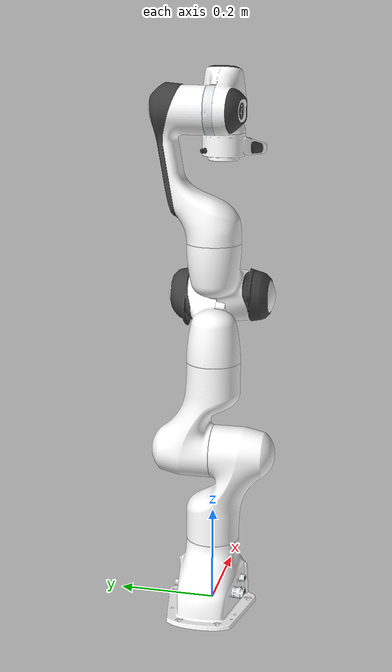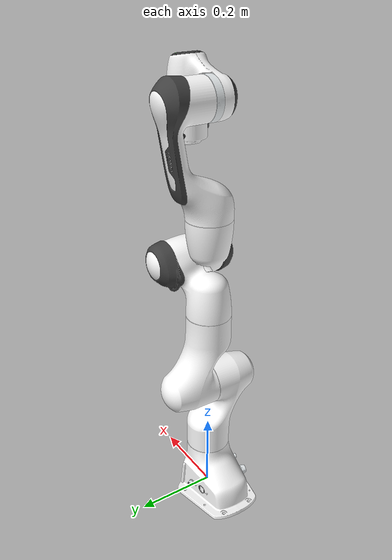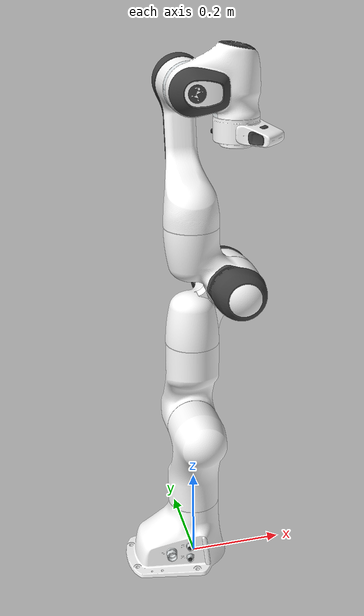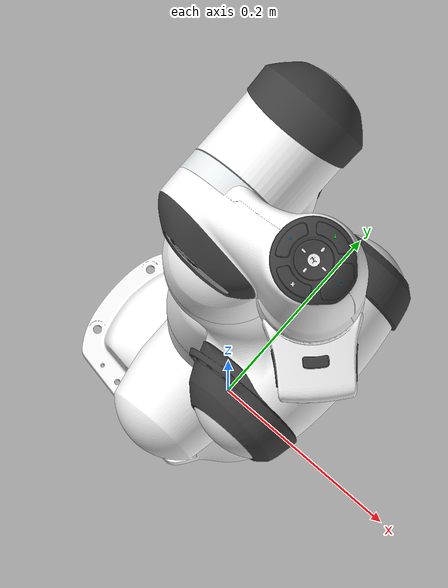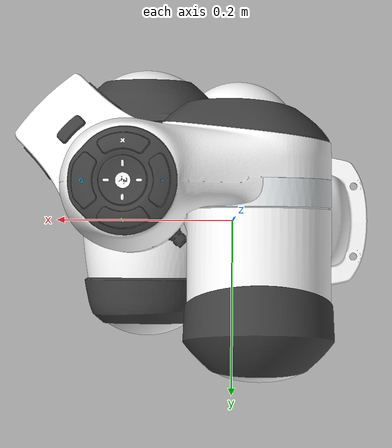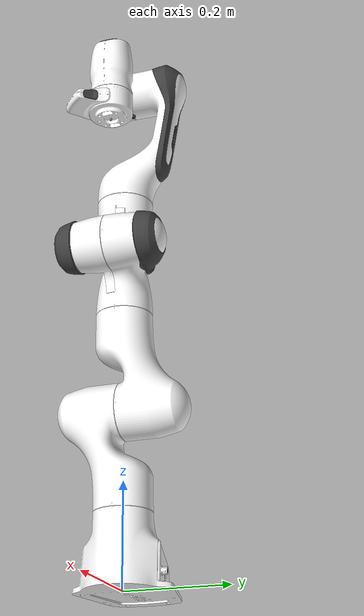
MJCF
<mujoco model="panda">
  <compiler angle="radian" autolimits="true" />
  <option integrator="implicitfast" timestep="0.001" cone="elliptic" impratio="10" />
  <default>
    <default class="panda">
      <material specular="0.5" shininess="0.25" />
      <joint armature="0.1" damping="1" axis="0 0 1" range="-2.8973 2.8973" />
      <general dyntype="none" biastype="affine" ctrlrange="-2.8973 2.8973" forcerange="-87 87" />
      <default class="finger">
        <joint axis="0 1 0" type="slide" range="0 0.04" />
      </default>
      <default class="visual">
        <geom type="mesh" contype="0" conaffinity="0" group="2" />
      </default>
      <default class="collision">
        <geom type="mesh" group="3" />
        <default class="fingertip_pad_collision_1">
          <geom type="box" size="0.0085 0.004 0.0085" pos="0 0.0055 0.0445" />
        </default>
        <default class="fingertip_pad_collision_2">
          <geom type="box" size="0.003 0.002 0.003" pos="0.0055 0.002 0.05" />
        </default>
        <default class="fingertip_pad_collision_3">
          <geom type="box" size="0.003 0.002 0.003" pos="-0.0055 0.002 0.05" />
        </default>
        <default class="fingertip_pad_collision_4">
          <geom type="box" size="0.003 0.002 0.0035" pos="0.0055 0.002 0.0395" />
        </default>
        <default class="fingertip_pad_collision_5">
          <geom type="box" size="0.003 0.002 0.0035" pos="-0.0055 0.002 0.0395" />
        </default>
      </default>
    </default>
    <default class="rq_2f85">
      <mesh scale="0.001 0.001 0.001" />
      <general biastype="affine" />
      <joint axis="1 0 0" />
      <default class="rq_driver">
        <joint range="0 0.8" armature="0.005" damping="0.1" solimplimit="0.95 0.99 0.001" solreflimit="0.005 1" />
      </default>
      <default class="rq_follower">
        <joint range="-0.872664 0.872664" armature="0.001" pos="0 -0.018 0.0065" solimplimit="0.95 0.99 0.001" solreflimit="0.005 1" />
      </default>
      <default class="rq_spring_link">
        <joint range="-0.29670597283 0.8" armature="0.001" stiffness="0.05" springref="2.62" damping="0.00125" />
      </default>
      <default class="rq_coupler">
        <joint range="-1.57 0" armature="0.001" solimplimit="0.95 0.99 0.001" solreflimit="0.005 1" />
      </default>
      <default class="rq_visual">
        <geom type="mesh" contype="0" conaffinity="0" group="2" />
      </default>
      <default class="rq_collision">
        <geom type="mesh" group="3" />
        <default class="rq_pad_box1">
          <geom mass="0" type="box" pos="0 -0.0026 0.028125" size="0.011 0.004 0.009375" friction="0.7" solimp="0.95 0.99 0.001" solref="0.004 1" priority="1" rgba="0.55 0.55 0.55 1" />
        </default>
        <default class="rq_pad_box2">
          <geom mass="0" type="box" pos="0 -0.0026 0.009375" size="0.011 0.004 0.009375" friction="0.6" solimp="0.95 0.99 0.001" solref="0.004 1" priority="1" rgba="0.45 0.45 0.45 1" />
        </default>
      </default>
    </default>
  </default>
  <asset>
    <material class="panda" name="white" rgba="1 1 1 1" />
    <material class="panda" name="off_white" rgba="0.901961 0.921569 0.929412 1" />
    <material class="panda" name="black" rgba="0.25 0.25 0.25 1" />
    <material class="panda" name="green" rgba="0 1 0 1" />
    <material class="panda" name="light_blue" rgba="0.039216 0.541176 0.780392 1" />
    <mesh name="link0_c" file="vendor/mujoco_menagerie/franka_emika_panda/assets/link0.stl" />
    <mesh name="link1_c" file="vendor/mujoco_menagerie/franka_emika_panda/assets/link1.stl" />
    <mesh name="link2_c" file="vendor/mujoco_menagerie/franka_emika_panda/assets/link2.stl" />
    <mesh name="link3_c" file="vendor/mujoco_menagerie/franka_emika_panda/assets/link3.stl" />
    <mesh name="link4_c" file="vendor/mujoco_menagerie/franka_emika_panda/assets/link4.stl" />
    <mesh name="link5_c0" file="vendor/mujoco_menagerie/franka_emika_panda/assets/link5_collision_0.obj" />
    <mesh name="link5_c1" file="vendor/mujoco_menagerie/franka_emika_panda/assets/link5_collision_1.obj" />
    <mesh name="link5_c2" file="vendor/mujoco_menagerie/franka_emika_panda/assets/link5_collision_2.obj" />
    <mesh name="link6_c" file="vendor/mujoco_menagerie/franka_emika_panda/assets/link6.stl" />
    <mesh name="link7_c" file="vendor/mujoco_menagerie/franka_emika_panda/assets/link7.stl" />
    <mesh name="hand_c" file="vendor/mujoco_menagerie/franka_emika_panda/assets/hand.stl" />
    <mesh file="vendor/mujoco_menagerie/franka_emika_panda/assets/link0_0.obj" />
    <mesh file="vendor/mujoco_menagerie/franka_emika_panda/assets/link0_1.obj" />
    <mesh file="vendor/mujoco_menagerie/franka_emika_panda/assets/link0_2.obj" />
    <mesh file="vendor/mujoco_menagerie/franka_emika_panda/assets/link0_3.obj" />
    <mesh file="vendor/mujoco_menagerie/franka_emika_panda/assets/link0_4.obj" />
    <mesh file="vendor/mujoco_menagerie/franka_emika_panda/assets/link0_5.obj" />
    <mesh file="vendor/mujoco_menagerie/franka_emika_panda/assets/link0_7.obj" />
    <mesh file="vendor/mujoco_menagerie/franka_emika_panda/assets/link0_8.obj" />
    <mesh file="vendor/mujoco_menagerie/franka_emika_panda/assets/link0_9.obj" />
    <mesh file="vendor/mujoco_menagerie/franka_emika_panda/assets/link0_10.obj" />
    <mesh file="vendor/mujoco_menagerie/franka_emika_panda/assets/link0_11.obj" />
    <mesh file="vendor/mujoco_menagerie/franka_emika_panda/assets/link1.obj" />
    <mesh file="vendor/mujoco_menagerie/franka_emika_panda/assets/link2.obj" />
    <mesh file="vendor/mujoco_menagerie/franka_emika_panda/assets/link3_0.obj" />
    <mesh file="vendor/mujoco_menagerie/franka_emika_panda/assets/link3_1.obj" />
    <mesh file="vendor/mujoco_menagerie/franka_emika_panda/assets/link3_2.obj" />
    <mesh file="vendor/mujoco_menagerie/franka_emika_panda/assets/link3_3.obj" />
    <mesh file="vendor/mujoco_menagerie/franka_emika_panda/assets/link4_0.obj" />
    <mesh file="vendor/mujoco_menagerie/franka_emika_panda/assets/link4_1.obj" />
    <mesh file="vendor/mujoco_menagerie/franka_emika_panda/assets/link4_2.obj" />
    <mesh file="vendor/mujoco_menagerie/franka_emika_panda/assets/link4_3.obj" />
    <mesh file="vendor/mujoco_menagerie/franka_emika_panda/assets/link5_0.obj" />
    <mesh file="vendor/mujoco_menagerie/franka_emika_panda/assets/link5_1.obj" />
    <mesh file="vendor/mujoco_menagerie/franka_emika_panda/assets/link5_2.obj" />
    <mesh file="vendor/mujoco_menagerie/franka_emika_panda/assets/link6_0.obj" />
    <mesh file="vendor/mujoco_menagerie/franka_emika_panda/assets/link6_1.obj" />
    <mesh file="vendor/mujoco_menagerie/franka_emika_panda/assets/link6_2.obj" />
    <mesh file="vendor/mujoco_menagerie/franka_emika_panda/assets/link6_3.obj" />
    <mesh file="vendor/mujoco_menagerie/franka_emika_panda/assets/link6_4.obj" />
    <mesh file="vendor/mujoco_menagerie/franka_emika_panda/assets/link6_5.obj" />
    <mesh file="vendor/mujoco_menagerie/franka_emika_panda/assets/link6_6.obj" />
    <mesh file="vendor/mujoco_menagerie/franka_emika_panda/assets/link6_7.obj" />
    <mesh file="vendor/mujoco_menagerie/franka_emika_panda/assets/link6_8.obj" />
    <mesh file="vendor/mujoco_menagerie/franka_emika_panda/assets/link6_9.obj" />
    <mesh file="vendor/mujoco_menagerie/franka_emika_panda/assets/link6_10.obj" />
    <mesh file="vendor/mujoco_menagerie/franka_emika_panda/assets/link6_11.obj" />
    <mesh file="vendor/mujoco_menagerie/franka_emika_panda/assets/link6_12.obj" />
    <mesh file="vendor/mujoco_menagerie/franka_emika_panda/assets/link6_13.obj" />
    <mesh file="vendor/mujoco_menagerie/franka_emika_panda/assets/link6_14.obj" />
    <mesh file="vendor/mujoco_menagerie/franka_emika_panda/assets/link6_15.obj" />
    <mesh file="vendor/mujoco_menagerie/franka_emika_panda/assets/link6_16.obj" />
    <mesh file="vendor/mujoco_menagerie/franka_emika_panda/assets/link7_0.obj" />
    <mesh file="vendor/mujoco_menagerie/franka_emika_panda/assets/link7_1.obj" />
    <mesh file="vendor/mujoco_menagerie/franka_emika_panda/assets/link7_2.obj" />
    <mesh file="vendor/mujoco_menagerie/franka_emika_panda/assets/link7_3.obj" />
    <mesh file="vendor/mujoco_menagerie/franka_emika_panda/assets/link7_4.obj" />
    <mesh file="vendor/mujoco_menagerie/franka_emika_panda/assets/link7_5.obj" />
    <mesh file="vendor/mujoco_menagerie/franka_emika_panda/assets/link7_6.obj" />
    <mesh file="vendor/mujoco_menagerie/franka_emika_panda/assets/link7_7.obj" />
    <mesh file="vendor/mujoco_menagerie/franka_emika_panda/assets/hand_0.obj" />
    <mesh file="vendor/mujoco_menagerie/franka_emika_panda/assets/hand_1.obj" />
    <mesh file="vendor/mujoco_menagerie/franka_emika_panda/assets/hand_2.obj" />
    <mesh file="vendor/mujoco_menagerie/franka_emika_panda/assets/hand_3.obj" />
    <mesh file="vendor/mujoco_menagerie/franka_emika_panda/assets/hand_4.obj" />
    <mesh file="vendor/mujoco_menagerie/franka_emika_panda/assets/finger_0.obj" />
    <mesh file="vendor/mujoco_menagerie/franka_emika_panda/assets/finger_1.obj" />
    <material name="rq_metal" rgba="0.58 0.58 0.58 1" />
    <material name="rq_silicone" rgba="0.1882 0.1882 0.1882 1" />
    <material name="rq_gray" rgba="0.4627 0.4627 0.4627 1" />
    <material name="rq_black" rgba="0.149 0.149 0.149 1" />
    <mesh class="rq_2f85" file="vendor/mujoco_menagerie/robotiq_2f85/assets/base_mount.stl" name="rq_base_mount" />
    <mesh class="rq_2f85" file="vendor/mujoco_menagerie/robotiq_2f85/assets/base.stl" name="rq_base" />
    <mesh class="rq_2f85" file="vendor/mujoco_menagerie/robotiq_2f85/assets/driver.stl" name="rq_driver" />
    <mesh class="rq_2f85" file="vendor/mujoco_menagerie/robotiq_2f85/assets/coupler.stl" name="rq_coupler" />
    <mesh class="rq_2f85" file="vendor/mujoco_menagerie/robotiq_2f85/assets/follower.stl" name="rq_follower" />
    <mesh class="rq_2f85" file="vendor/mujoco_menagerie/robotiq_2f85/assets/pad.stl" name="rq_pad" />
    <mesh class="rq_2f85" file="vendor/mujoco_menagerie/robotiq_2f85/assets/silicone_pad.stl" name="rq_silicone_pad" />
    <mesh class="rq_2f85" file="vendor/mujoco_menagerie/robotiq_2f85/assets/spring_link.stl" name="rq_spring_link" />
  </asset>
  <worldbody>
    <light name="top" pos="0 0 2" mode="trackcom" />
    <body name="link0" childclass="panda" gravcomp="1">
      <inertial mass="0.629769" pos="-0.041018 -0.00014 0.049974" fullinertia="0.00315 0.00388 0.004285 8.2904e-7 0.00015 8.2299e-6" />
      <geom mesh="link0_0" material="off_white" class="visual" />
      <geom mesh="link0_1" material="black" class="visual" />
      <geom mesh="link0_2" material="off_white" class="visual" />
      <geom mesh="link0_3" material="black" class="visual" />
      <geom mesh="link0_4" material="off_white" class="visual" />
      <geom mesh="link0_5" material="black" class="visual" />
      <geom mesh="link0_7" material="white" class="visual" />
      <geom mesh="link0_8" material="white" class="visual" />
      <geom mesh="link0_9" material="black" class="visual" />
      <geom mesh="link0_10" material="off_white" class="visual" />
      <geom mesh="link0_11" material="white" class="visual" />
      <geom mesh="link0_c" class="collision" />
      <body name="link1" pos="0 0 0.333" gravcomp="1">
        <inertial mass="4.970684" pos="0.003875 0.002081 -0.04762" fullinertia="0.70337 0.70661 0.0091170 -0.00013900 0.0067720 0.019169" />
        <joint name="joint1" />
        <geom material="white" mesh="link1" class="visual" />
        <geom mesh="link1_c" class="collision" />
        <body name="link2" quat="1 -1 0 0" gravcomp="1">
          <inertial mass="0.646926" pos="-0.003141 -0.02872 0.003495" fullinertia="0.0079620 2.8110e-2 2.5995e-2 -3.925e-3 1.0254e-2 7.04e-4" />
          <joint name="joint2" range="-1.7628 1.7628" />
          <geom material="white" mesh="link2" class="visual" />
          <geom mesh="link2_c" class="collision" />
          <body name="link3" pos="0 -0.316 0" quat="1 1 0 0" gravcomp="1">
            <joint name="joint3" />
            <inertial mass="3.228604" pos="2.7518e-2 3.9252e-2 -6.6502e-2" fullinertia="3.7242e-2 3.6155e-2 1.083e-2 -4.761e-3 -1.1396e-2 -1.2805e-2" />
            <geom mesh="link3_0" material="white" class="visual" />
            <geom mesh="link3_1" material="white" class="visual" />
            <geom mesh="link3_2" material="white" class="visual" />
            <geom mesh="link3_3" material="black" class="visual" />
            <geom mesh="link3_c" class="collision" />
            <body name="link4" pos="0.0825 0 0" quat="1 1 0 0" gravcomp="1">
              <inertial mass="3.587895" pos="-5.317e-2 1.04419e-1 2.7454e-2" fullinertia="2.5853e-2 1.9552e-2 2.8323e-2 7.796e-3 -1.332e-3 8.641e-3" />
              <joint name="joint4" range="-3.0718 -0.0698" />
              <geom mesh="link4_0" material="white" class="visual" />
              <geom mesh="link4_1" material="white" class="visual" />
              <geom mesh="link4_2" material="black" class="visual" />
              <geom mesh="link4_3" material="white" class="visual" />
              <geom mesh="link4_c" class="collision" />
              <body name="link5" pos="-0.0825 0.384 0" quat="1 -1 0 0" gravcomp="1">
                <inertial mass="1.225946" pos="-1.1953e-2 4.1065e-2 -3.8437e-2" fullinertia="3.5549e-2 2.9474e-2 8.627e-3 -2.117e-3 -4.037e-3 2.29e-4" />
                <joint name="joint5" />
                <geom mesh="link5_0" material="black" class="visual" />
                <geom mesh="link5_1" material="white" class="visual" />
                <geom mesh="link5_2" material="white" class="visual" />
                <geom mesh="link5_c0" class="collision" />
                <geom mesh="link5_c1" class="collision" />
                <geom mesh="link5_c2" class="collision" />
                <body name="link6" quat="1 1 0 0" gravcomp="1">
                  <inertial mass="1.666555" pos="6.0149e-2 -1.4117e-2 -1.0517e-2" fullinertia="1.964e-3 4.354e-3 5.433e-3 1.09e-4 -1.158e-3 3.41e-4" />
                  <joint name="joint6" range="-0.0175 3.7525" />
                  <geom mesh="link6_0" material="off_white" class="visual" />
                  <geom mesh="link6_1" material="white" class="visual" />
                  <geom mesh="link6_2" material="black" class="visual" />
                  <geom mesh="link6_3" material="white" class="visual" />
                  <geom mesh="link6_4" material="white" class="visual" />
                  <geom mesh="link6_5" material="white" class="visual" />
                  <geom mesh="link6_6" material="white" class="visual" />
                  <geom mesh="link6_7" material="light_blue" class="visual" />
                  <geom mesh="link6_8" material="light_blue" class="visual" />
                  <geom mesh="link6_9" material="black" class="visual" />
                  <geom mesh="link6_10" material="black" class="visual" />
                  <geom mesh="link6_11" material="white" class="visual" />
                  <geom mesh="link6_12" material="green" class="visual" />
                  <geom mesh="link6_13" material="white" class="visual" />
                  <geom mesh="link6_14" material="black" class="visual" />
                  <geom mesh="link6_15" material="black" class="visual" />
                  <geom mesh="link6_16" material="white" class="visual" />
                  <geom mesh="link6_c" class="collision" />
                  <body name="link7" pos="0.088 0 0" quat="1 1 0 0" gravcomp="1">
                    <inertial mass="7.35522e-01" pos="1.0517e-2 -4.252e-3 6.1597e-2" fullinertia="1.2516e-2 1.0027e-2 4.815e-3 -4.28e-4 -1.196e-3 -7.41e-4" />
                    <joint name="joint7" />
                    <geom mesh="link7_0" material="white" class="visual" />
                    <geom mesh="link7_1" material="black" class="visual" />
                    <geom mesh="link7_2" material="black" class="visual" />
                    <geom mesh="link7_3" material="black" class="visual" />
                    <geom mesh="link7_4" material="black" class="visual" />
                    <geom mesh="link7_5" material="black" class="visual" />
                    <geom mesh="link7_6" material="black" class="visual" />
                    <geom mesh="link7_7" material="white" class="visual" />
                    <geom mesh="link7_c" class="collision" />
                    <body name="tool_flange" pos="0 0 0.107" quat="0.9238795325 0 0 -0.3826834324" gravcomp="1">
                      <site name="flange_site" size=".003" />
                      <body name="rq_base_mount" pos="0 0 0.007" childclass="rq_2f85" gravcomp="1">
                        <geom class="rq_visual" mesh="rq_base_mount" material="rq_black" />
                        <geom class="rq_collision" mesh="rq_base_mount" />
                        <body name="rq_base" pos="0 0 0.0038" quat="1 0 0 -1" gravcomp="1">
                          <inertial mass="0.777441" pos="0 -2.70394e-05 0.0354675" quat="1 -0.00152849 0 0" diaginertia="0.000260285 0.000225381 0.000152708" />
                          <geom class="rq_visual" mesh="rq_base" material="rq_black" />
                          <geom class="rq_collision" mesh="rq_base" />
                          <site name="rq_pinch" pos="0 0 0.145" type="sphere" group="5" rgba="0.9 0.9 0.9 1" size="0.005" />
                          <body name="rq_right_driver" pos="0 0.0306011 0.054904" gravcomp="1">
                            <inertial mass="0.00899563" pos="2.96931e-12 0.0177547 0.00107314" quat="0.681301 0.732003 0 0" diaginertia="1.72352e-06 1.60906e-06 3.22006e-07" />
                            <joint name="rq_right_driver_joint" class="rq_driver" />
                            <geom class="rq_visual" mesh="rq_driver" material="rq_gray" />
                            <geom class="rq_collision" mesh="rq_driver" />
                            <body name="rq_right_coupler" pos="0 0.0315 -0.0041" gravcomp="1">
                              <inertial mass="0.0140974" pos="0 0.00301209 0.0232175" quat="0.705636 -0.0455904 0.0455904 0.705636" diaginertia="4.16206e-06 3.52216e-06 8.88131e-07" />
                              <joint name="rq_right_coupler_joint" class="rq_coupler" />
                              <geom class="rq_visual" mesh="rq_coupler" material="rq_black" />
                              <geom class="rq_collision" mesh="rq_coupler" />
                            </body>
                          </body>
                          <body name="rq_right_spring_link" pos="0 0.0132 0.0609" gravcomp="1">
                            <inertial mass="0.0221642" pos="-8.65005e-09 0.0181624 0.0212658" quat="0.663403 -0.244737 0.244737 0.663403" diaginertia="8.96853e-06 6.71733e-06 2.63931e-06" />
                            <joint name="rq_right_spring_link_joint" class="rq_spring_link" />
                            <geom class="rq_visual" mesh="rq_spring_link" material="rq_black" />
                            <geom class="rq_collision" mesh="rq_spring_link" />
                            <body name="rq_right_follower" pos="0 0.055 0.0375" gravcomp="1">
                              <inertial mass="0.0125222" pos="0 -0.011046 0.0124786" quat="1 0.1664 0 0" diaginertia="2.67415e-06 2.4559e-06 6.02031e-07" />
                              <joint name="rq_right_follower_joint" class="rq_follower" />
                              <geom class="rq_visual" mesh="rq_follower" material="rq_black" />
                              <geom class="rq_collision" mesh="rq_follower" />
                              <body name="rq_right_pad" pos="0 -0.0189 0.01352" gravcomp="1">
                                <geom class="rq_pad_box1" name="rq_right_pad1" />
                                <geom class="rq_pad_box2" name="rq_right_pad2" />
                                <inertial mass="0.0035" pos="0 -0.0025 0.0185" quat="0.707107 0 0 0.707107" diaginertia="4.73958e-07 3.64583e-07 1.23958e-07" />
                                <geom class="rq_visual" mesh="rq_pad" />
                                <body name="rq_right_silicone_pad" gravcomp="1">
                                  <geom class="rq_visual" mesh="rq_silicone_pad" material="rq_black" />
                                </body>
                              </body>
                            </body>
                          </body>
                          <body name="rq_left_driver" pos="0 -0.0306011 0.054904" quat="0 0 0 1" gravcomp="1">
                            <inertial mass="0.00899563" pos="0 0.0177547 0.00107314" quat="0.681301 0.732003 0 0" diaginertia="1.72352e-06 1.60906e-06 3.22006e-07" />
                            <joint name="rq_left_driver_joint" class="rq_driver" />
                            <geom class="rq_visual" mesh="rq_driver" material="rq_gray" />
                            <geom class="rq_collision" mesh="rq_driver" />
                            <body name="rq_left_coupler" pos="0 0.0315 -0.0041" gravcomp="1">
                              <inertial mass="0.0140974" pos="0 0.00301209 0.0232175" quat="0.705636 -0.0455904 0.0455904 0.705636" diaginertia="4.16206e-06 3.52216e-06 8.88131e-07" />
                              <joint name="rq_left_coupler_joint" class="rq_coupler" />
                              <geom class="rq_visual" mesh="rq_coupler" material="rq_black" />
                              <geom class="rq_collision" mesh="rq_coupler" />
                            </body>
                          </body>
                          <body name="rq_left_spring_link" pos="0 -0.0132 0.0609" quat="0 0 0 1" gravcomp="1">
                            <inertial mass="0.0221642" pos="-8.65005e-09 0.0181624 0.0212658" quat="0.663403 -0.244737 0.244737 0.663403" diaginertia="8.96853e-06 6.71733e-06 2.63931e-06" />
                            <joint name="rq_left_spring_link_joint" class="rq_spring_link" />
                            <geom class="rq_visual" mesh="rq_spring_link" material="rq_black" />
                            <geom class="rq_collision" mesh="rq_spring_link" />
                            <body name="rq_left_follower" pos="0 0.055 0.0375" gravcomp="1">
                              <inertial mass="0.0125222" pos="0 -0.011046 0.0124786" quat="1 0.1664 0 0" diaginertia="2.67415e-06 2.4559e-06 6.02031e-07" />
                              <joint name="rq_left_follower_joint" class="rq_follower" />
                              <geom class="rq_visual" mesh="rq_follower" material="rq_black" />
                              <geom class="rq_collision" mesh="rq_follower" />
                              <body name="rq_left_pad" pos="0 -0.0189 0.01352" gravcomp="1">
                                <geom class="rq_pad_box1" name="rq_left_pad1" />
                                <geom class="rq_pad_box2" name="rq_left_pad2" />
                                <inertial mass="0.0035" pos="0 -0.0025 0.0185" quat="1 0 0 1" diaginertia="4.73958e-07 3.64583e-07 1.23958e-07" />
                                <geom class="rq_visual" mesh="rq_pad" />
                                <body name="rq_left_silicone_pad" gravcomp="1">
                                  <geom class="rq_visual" mesh="rq_silicone_pad" material="rq_black" />
                                </body>
                              </body>
                            </body>
                          </body>
                        </body>
                      </body>
                    </body>
                  </body>
                </body>
              </body>
            </body>
          </body>
        </body>
      </body>
    </body>
  </worldbody>
  <actuator>
    <general class="panda" name="actuator1" joint="joint1" gainprm="4500" biasprm="0 -4500 -450" />
    <general class="panda" name="actuator2" joint="joint2" gainprm="4500" biasprm="0 -4500 -450" ctrlrange="-1.7628 1.7628" />
    <general class="panda" name="actuator3" joint="joint3" gainprm="3500" biasprm="0 -3500 -350" />
    <general class="panda" name="actuator4" joint="joint4" gainprm="3500" biasprm="0 -3500 -350" ctrlrange="-3.0718 -0.0698" />
    <general class="panda" name="actuator5" joint="joint5" gainprm="2000" biasprm="0 -2000 -200" forcerange="-12 12" />
    <general class="panda" name="actuator6" joint="joint6" gainprm="2000" biasprm="0 -2000 -200" forcerange="-12 12" ctrlrange="-0.0175 3.7525" />
    <general class="panda" name="actuator7" joint="joint7" gainprm="2000" biasprm="0 -2000 -200" forcerange="-12 12" />
    <general class="rq_2f85" name="rq_fingers_actuator" tendon="rq_split" forcerange="-5 5" ctrlrange="0 255" gainprm="0.3137255 0 0" biasprm="0 -100 -10" />
  </actuator>
  <contact>
    <exclude body1="link0" body2="link1" />
    <exclude body1="rq_base" body2="rq_left_driver" />
    <exclude body1="rq_base" body2="rq_right_driver" />
    <exclude body1="rq_base" body2="rq_left_spring_link" />
    <exclude body1="rq_base" body2="rq_right_spring_link" />
    <exclude body1="rq_right_coupler" body2="rq_right_follower" />
    <exclude body1="rq_left_coupler" body2="rq_left_follower" />
  </contact>
  <tendon>
    <fixed name="rq_split">
      <joint joint="rq_right_driver_joint" coef="0.5" />
      <joint joint="rq_left_driver_joint" coef="0.5" />
    </fixed>
  </tendon>
  <equality>
    <connect anchor="0 0 0" body1="rq_right_follower" body2="rq_right_coupler" solimp="0.95 0.99 0.001" solref="0.005 1" />
    <connect anchor="0 0 0" body1="rq_left_follower" body2="rq_left_coupler" solimp="0.95 0.99 0.001" solref="0.005 1" />
    <joint joint1="rq_right_driver_joint" joint2="rq_left_driver_joint" polycoef="0 1 0 0 0" solimp="0.95 0.99 0.001" solref="0.005 1" />
  </equality>
</mujoco>
